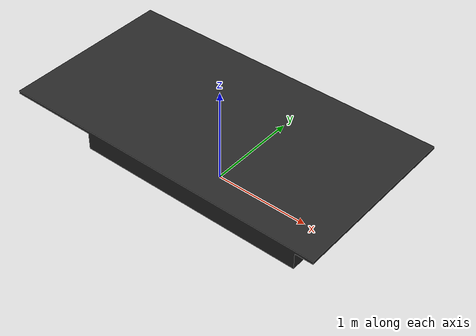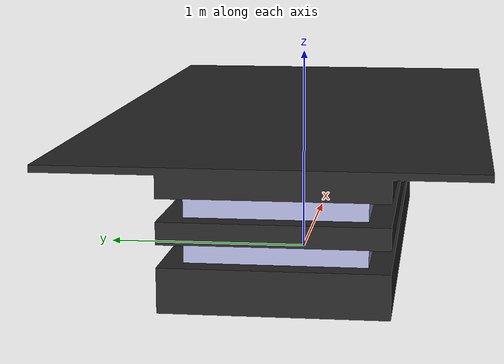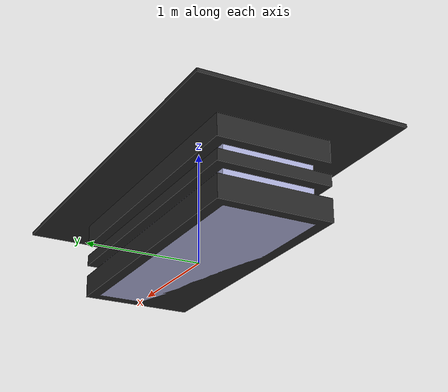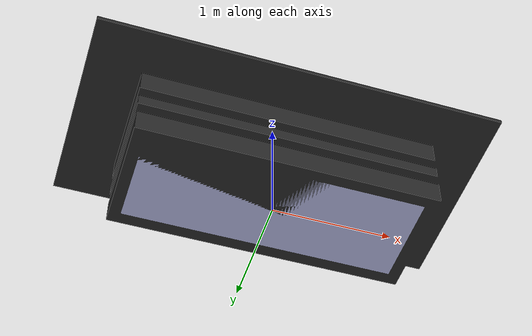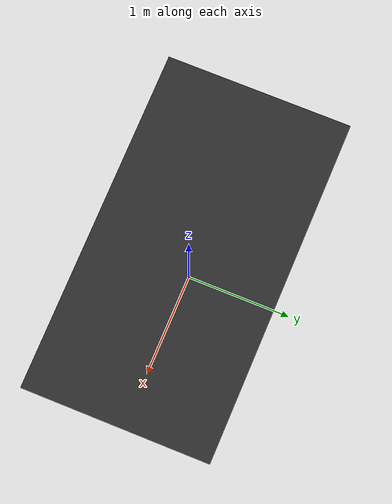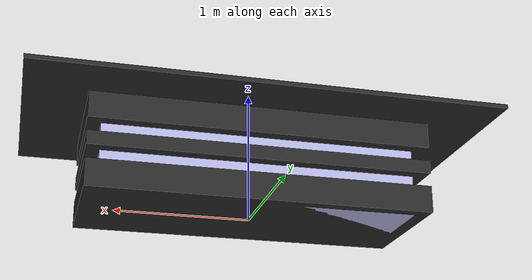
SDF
<?xml version='1.0' ?>
<sdf version='1.6'>
  <model name='meeting_desk'>
    <static>true</static>
    <link name='link'>
      <collision name='collision'>
        <geometry>
          <mesh>
            <uri>model://volta_simulation/models/meeting_desk/meshes/meeting_desk.dae</uri>
          </mesh>
        </geometry>
        <surface>
          <friction>
            <ode>
              <mu>100</mu>
              <mu2>50</mu2>
            </ode>
          </friction>
        </surface>
      </collision>
      <visual name='visual'>
        <geometry>
          <mesh>
            <uri>model://volta_simulation/models/meeting_desk/meshes/meeting_desk.dae</uri>
          </mesh>
        </geometry>
      </visual>
    </link>
  </model>
</sdf>
